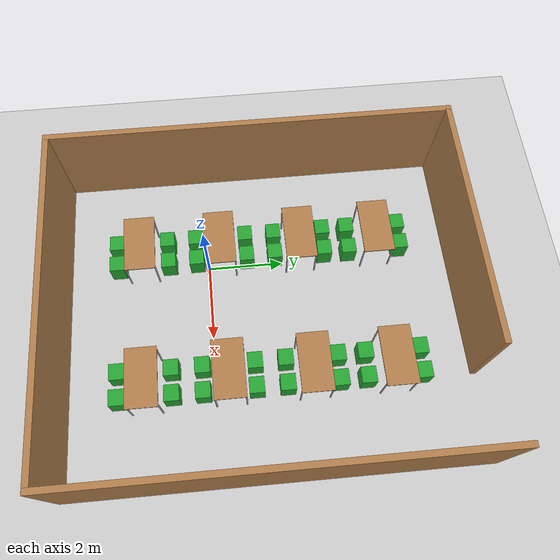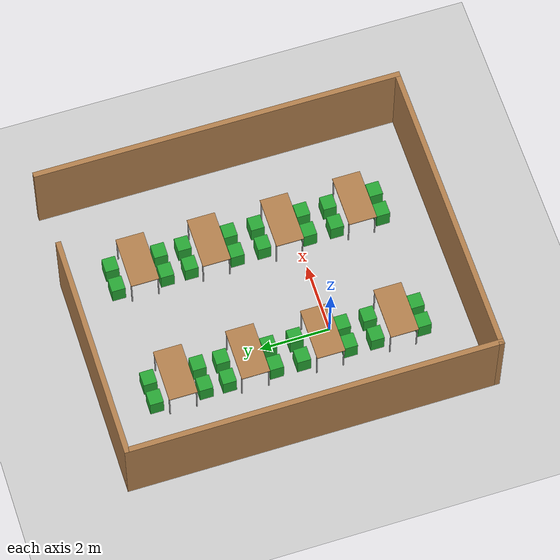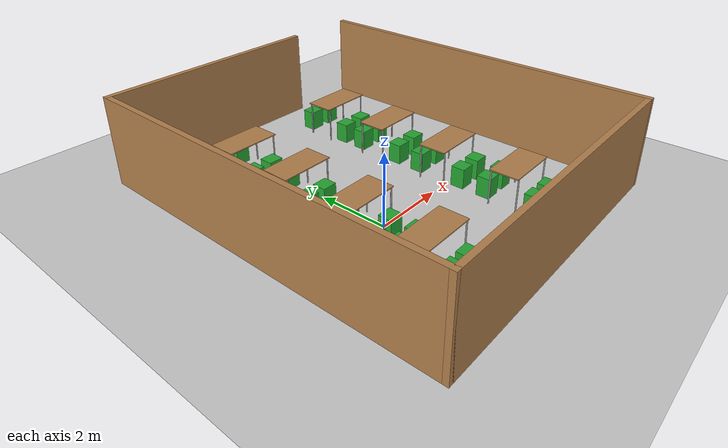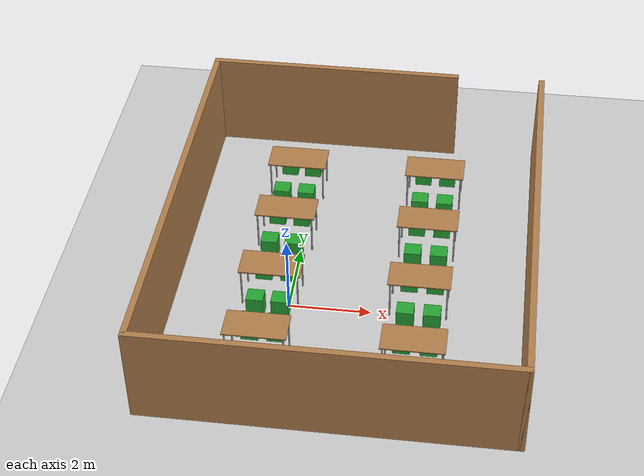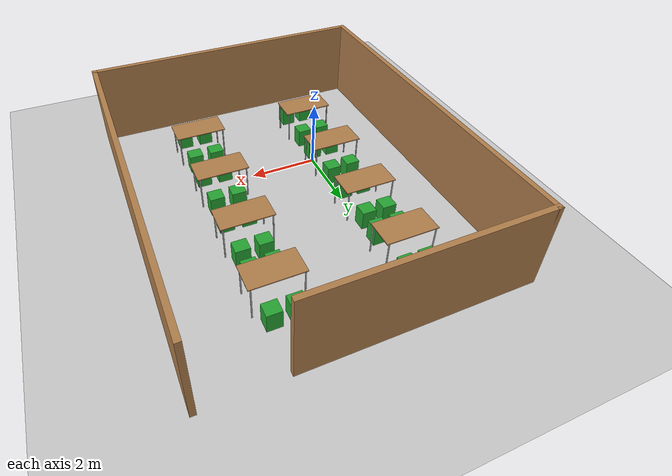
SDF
<sdf version="1.7">
 <world name="default">
  <light name="sun" type="directional">
   <pose>0 0 10 0 -0 0</pose>
   <diffuse>0.8 0.8 0.8 1</diffuse>
   <specular>0.2 0.2 0.2 1</specular>
   <attenuation>
    <range>1000</range>
    <constant>0.9</constant>
    <linear>0.01</linear>
    <quadratic>0.001</quadratic>
   </attenuation>
   <direction>-0.5 0.1 -0.9</direction>
   <spot><inner_angle>0</inner_angle><outer_angle>0</outer_angle><falloff>0</falloff></spot>
  </light>
  <model name="ground_plane">
   <static>1</static>
   <link name="link">
    <collision name="collision">
     <geometry><plane><normal>0 0 1</normal><size>100 100</size></plane></geometry>
     <surface>
      <contact><collide_bitmask>65535</collide_bitmask></contact>
      <friction><ode><mu>100</mu><mu2>50</mu2></ode></friction>
     </surface>
    </collision>
    <visual name="visual">
     <cast_shadows>0</cast_shadows>
     <geometry><plane><normal>0 0 1</normal><size>100 100</size></plane></geometry>
     <material>
      <script><uri>file://media/materials/scripts/gazebo.material</uri><name>Gazebo/Grey</name></script>
     </material>
    </visual>
   </link>
  </model>
  <gravity>0 0 -9.8</gravity>
  <magnetic_field>6e-06 2.3e-05 -4.2e-05</magnetic_field>
  <atmosphere type="adiabatic"/>
  <physics type="ode">
   <max_step_size>0.001</max_step_size>
   <real_time_factor>1</real_time_factor>
   <real_time_update_rate>1000</real_time_update_rate>
  </physics>
  <scene><ambient>0.4 0.4 0.4 1</ambient><background>0.7 0.7 0.7 1</background><shadows>1</shadows></scene>
  <audio><device>default</device></audio>
  <spherical_coordinates>
   <surface_model>EARTH_WGS84</surface_model>
   <latitude_deg>0</latitude_deg>
   <longitude_deg>0</longitude_deg>
   <elevation>0</elevation>
   <heading_deg>0</heading_deg>
  </spherical_coordinates>
  <model name="table">
   <static>1</static>
   <link name="link">
    <collision name="surface">
     <pose>0 0 1 0 -0 0</pose>
     <geometry><box><size>1.5 0.8 0.03</size></box></geometry>
     <surface><friction><ode><mu>0.6</mu><mu2>0.6</mu2></ode></friction></surface>
    </collision>
    <visual name="visual1">
     <pose>0 0 1 0 -0 0</pose>
     <geometry><box><size>1.5 0.8 0.03</size></box></geometry>
     <material>
      <script><uri>file://media/materials/scripts/gazebo.material</uri><name>Gazebo/Wood</name></script>
     </material>
    </visual>
    <collision name="front_left_leg">
     <pose>0.68 0.38 0.5 0 -0 0</pose>
     <geometry><cylinder><radius>0.02</radius><length>1</length></cylinder></geometry>
    </collision>
    <visual name="front_left_leg">
     <pose>0.68 0.38 0.5 0 -0 0</pose>
     <geometry><cylinder><radius>0.02</radius><length>1</length></cylinder></geometry>
     <material>
      <script><uri>file://media/materials/scripts/gazebo.material</uri><name>Gazebo/Grey</name></script>
     </material>
    </visual>
    <collision name="front_right_leg">
     <pose>0.68 -0.38 0.5 0 -0 0</pose>
     <geometry><cylinder><radius>0.02</radius><length>1</length></cylinder></geometry>
    </collision>
    <visual name="front_right_leg">
     <pose>0.68 -0.38 0.5 0 -0 0</pose>
     <geometry><cylinder><radius>0.02</radius><length>1</length></cylinder></geometry>
     <material>
      <script><uri>file://media/materials/scripts/gazebo.material</uri><name>Gazebo/Grey</name></script>
     </material>
    </visual>
    <collision name="back_right_leg">
     <pose>-0.68 -0.38 0.5 0 -0 0</pose>
     <geometry><cylinder><radius>0.02</radius><length>1</length></cylinder></geometry>
    </collision>
    <visual name="back_right_leg">
     <pose>-0.68 -0.38 0.5 0 -0 0</pose>
     <geometry><cylinder><radius>0.02</radius><length>1</length></cylinder></geometry>
     <material>
      <script><uri>file://media/materials/scripts/gazebo.material</uri><name>Gazebo/Grey</name></script>
     </material>
    </visual>
    <collision name="back_left_leg">
     <pose>-0.68 0.38 0.5 0 -0 0</pose>
     <geometry><cylinder><radius>0.02</radius><length>1</length></cylinder></geometry>
    </collision>
    <visual name="back_left_leg">
     <pose>-0.68 0.38 0.5 0 -0 0</pose>
     <geometry><cylinder><radius>0.02</radius><length>1</length></cylinder></geometry>
     <material>
      <script><uri>file://media/materials/scripts/gazebo.material</uri><name>Gazebo/Grey</name></script>
     </material>
    </visual>
   </link>
   <pose>-0.449286 -1.73361 0 0 -0 0</pose>
  </model>
  <model name="table_0">
   <static>1</static>
   <link name="link">
    <collision name="surface">
     <pose>0 0 1 0 -0 0</pose>
     <geometry><box><size>1.5 0.8 0.03</size></box></geometry>
     <surface><friction><ode><mu>0.6</mu><mu2>0.6</mu2></ode></friction></surface>
    </collision>
    <visual name="visual1">
     <pose>0 0 1 0 -0 0</pose>
     <geometry><box><size>1.5 0.8 0.03</size></box></geometry>
     <material>
      <script><uri>file://media/materials/scripts/gazebo.material</uri><name>Gazebo/Wood</name></script>
     </material>
    </visual>
    <collision name="front_left_leg">
     <pose>0.68 0.38 0.5 0 -0 0</pose>
     <geometry><cylinder><radius>0.02</radius><length>1</length></cylinder></geometry>
    </collision>
    <visual name="front_left_leg">
     <pose>0.68 0.38 0.5 0 -0 0</pose>
     <geometry><cylinder><radius>0.02</radius><length>1</length></cylinder></geometry>
     <material>
      <script><uri>file://media/materials/scripts/gazebo.material</uri><name>Gazebo/Grey</name></script>
     </material>
    </visual>
    <collision name="front_right_leg">
     <pose>0.68 -0.38 0.5 0 -0 0</pose>
     <geometry><cylinder><radius>0.02</radius><length>1</length></cylinder></geometry>
    </collision>
    <visual name="front_right_leg">
     <pose>0.68 -0.38 0.5 0 -0 0</pose>
     <geometry><cylinder><radius>0.02</radius><length>1</length></cylinder></geometry>
     <material>
      <script><uri>file://media/materials/scripts/gazebo.material</uri><name>Gazebo/Grey</name></script>
     </material>
    </visual>
    <collision name="back_right_leg">
     <pose>-0.68 -0.38 0.5 0 -0 0</pose>
     <geometry><cylinder><radius>0.02</radius><length>1</length></cylinder></geometry>
    </collision>
    <visual name="back_right_leg">
     <pose>-0.68 -0.38 0.5 0 -0 0</pose>
     <geometry><cylinder><radius>0.02</radius><length>1</length></cylinder></geometry>
     <material>
      <script><uri>file://media/materials/scripts/gazebo.material</uri><name>Gazebo/Grey</name></script>
     </material>
    </visual>
    <collision name="back_left_leg">
     <pose>-0.68 0.38 0.5 0 -0 0</pose>
     <geometry><cylinder><radius>0.02</radius><length>1</length></cylinder></geometry>
    </collision>
    <visual name="back_left_leg">
     <pose>-0.68 0.38 0.5 0 -0 0</pose>
     <geometry><cylinder><radius>0.02</radius><length>1</length></cylinder></geometry>
     <material>
      <script><uri>file://media/materials/scripts/gazebo.material</uri><name>Gazebo/Grey</name></script>
     </material>
    </visual>
   </link>
   <pose>3.15884 -1.74422 0 0 -0 0</pose>
  </model>
  <model name="table_1">
   <static>1</static>
   <link name="link">
    <collision name="surface">
     <pose>0 0 1 0 -0 0</pose>
     <geometry><box><size>1.5 0.8 0.03</size></box></geometry>
     <surface><friction><ode><mu>0.6</mu><mu2>0.6</mu2></ode></friction></surface>
    </collision>
    <visual name="visual1">
     <pose>0 0 1 0 -0 0</pose>
     <geometry><box><size>1.5 0.8 0.03</size></box></geometry>
     <material>
      <script><uri>file://media/materials/scripts/gazebo.material</uri><name>Gazebo/Wood</name></script>
     </material>
    </visual>
    <collision name="front_left_leg">
     <pose>0.68 0.38 0.5 0 -0 0</pose>
     <geometry><cylinder><radius>0.02</radius><length>1</length></cylinder></geometry>
    </collision>
    <visual name="front_left_leg">
     <pose>0.68 0.38 0.5 0 -0 0</pose>
     <geometry><cylinder><radius>0.02</radius><length>1</length></cylinder></geometry>
     <material>
      <script><uri>file://media/materials/scripts/gazebo.material</uri><name>Gazebo/Grey</name></script>
     </material>
    </visual>
    <collision name="front_right_leg">
     <pose>0.68 -0.38 0.5 0 -0 0</pose>
     <geometry><cylinder><radius>0.02</radius><length>1</length></cylinder></geometry>
    </collision>
    <visual name="front_right_leg">
     <pose>0.68 -0.38 0.5 0 -0 0</pose>
     <geometry><cylinder><radius>0.02</radius><length>1</length></cylinder></geometry>
     <material>
      <script><uri>file://media/materials/scripts/gazebo.material</uri><name>Gazebo/Grey</name></script>
     </material>
    </visual>
    <collision name="back_right_leg">
     <pose>-0.68 -0.38 0.5 0 -0 0</pose>
     <geometry><cylinder><radius>0.02</radius><length>1</length></cylinder></geometry>
    </collision>
    <visual name="back_right_leg">
     <pose>-0.68 -0.38 0.5 0 -0 0</pose>
     <geometry><cylinder><radius>0.02</radius><length>1</length></cylinder></geometry>
     <material>
      <script><uri>file://media/materials/scripts/gazebo.material</uri><name>Gazebo/Grey</name></script>
     </material>
    </visual>
    <collision name="back_left_leg">
     <pose>-0.68 0.38 0.5 0 -0 0</pose>
     <geometry><cylinder><radius>0.02</radius><length>1</length></cylinder></geometry>
    </collision>
    <visual name="back_left_leg">
     <pose>-0.68 0.38 0.5 0 -0 0</pose>
     <geometry><cylinder><radius>0.02</radius><length>1</length></cylinder></geometry>
     <material>
      <script><uri>file://media/materials/scripts/gazebo.material</uri><name>Gazebo/Grey</name></script>
     </material>
    </visual>
   </link>
   <pose>-0.448266 0.356158 0 0 -0 0</pose>
  </model>
  <model name="table_2">
   <static>1</static>
   <link name="link">
    <collision name="surface">
     <pose>0 0 1 0 -0 0</pose>
     <geometry><box><size>1.5 0.8 0.03</size></box></geometry>
     <surface><friction><ode><mu>0.6</mu><mu2>0.6</mu2></ode></friction></surface>
    </collision>
    <visual name="visual1">
     <pose>0 0 1 0 -0 0</pose>
     <geometry><box><size>1.5 0.8 0.03</size></box></geometry>
     <material>
      <script><uri>file://media/materials/scripts/gazebo.material</uri><name>Gazebo/Wood</name></script>
     </material>
    </visual>
    <collision name="front_left_leg">
     <pose>0.68 0.38 0.5 0 -0 0</pose>
     <geometry><cylinder><radius>0.02</radius><length>1</length></cylinder></geometry>
    </collision>
    <visual name="front_left_leg">
     <pose>0.68 0.38 0.5 0 -0 0</pose>
     <geometry><cylinder><radius>0.02</radius><length>1</length></cylinder></geometry>
     <material>
      <script><uri>file://media/materials/scripts/gazebo.material</uri><name>Gazebo/Grey</name></script>
     </material>
    </visual>
    <collision name="front_right_leg">
     <pose>0.68 -0.38 0.5 0 -0 0</pose>
     <geometry><cylinder><radius>0.02</radius><length>1</length></cylinder></geometry>
    </collision>
    <visual name="front_right_leg">
     <pose>0.68 -0.38 0.5 0 -0 0</pose>
     <geometry><cylinder><radius>0.02</radius><length>1</length></cylinder></geometry>
     <material>
      <script><uri>file://media/materials/scripts/gazebo.material</uri><name>Gazebo/Grey</name></script>
     </material>
    </visual>
    <collision name="back_right_leg">
     <pose>-0.68 -0.38 0.5 0 -0 0</pose>
     <geometry><cylinder><radius>0.02</radius><length>1</length></cylinder></geometry>
    </collision>
    <visual name="back_right_leg">
     <pose>-0.68 -0.38 0.5 0 -0 0</pose>
     <geometry><cylinder><radius>0.02</radius><length>1</length></cylinder></geometry>
     <material>
      <script><uri>file://media/materials/scripts/gazebo.material</uri><name>Gazebo/Grey</name></script>
     </material>
    </visual>
    <collision name="back_left_leg">
     <pose>-0.68 0.38 0.5 0 -0 0</pose>
     <geometry><cylinder><radius>0.02</radius><length>1</length></cylinder></geometry>
    </collision>
    <visual name="back_left_leg">
     <pose>-0.68 0.38 0.5 0 -0 0</pose>
     <geometry><cylinder><radius>0.02</radius><length>1</length></cylinder></geometry>
     <material>
      <script><uri>file://media/materials/scripts/gazebo.material</uri><name>Gazebo/Grey</name></script>
     </material>
    </visual>
   </link>
   <pose>3.12408 0.362677 0 0 -0 0</pose>
  </model>
  <model name="table_3">
   <static>1</static>
   <link name="link">
    <collision name="surface">
     <pose>0 0 1 0 -0 0</pose>
     <geometry><box><size>1.5 0.8 0.03</size></box></geometry>
     <surface><friction><ode><mu>0.6</mu><mu2>0.6</mu2></ode></friction></surface>
    </collision>
    <visual name="visual1">
     <pose>0 0 1 0 -0 0</pose>
     <geometry><box><size>1.5 0.8 0.03</size></box></geometry>
     <material>
      <script><uri>file://media/materials/scripts/gazebo.material</uri><name>Gazebo/Wood</name></script>
     </material>
    </visual>
    <collision name="front_left_leg">
     <pose>0.68 0.38 0.5 0 -0 0</pose>
     <geometry><cylinder><radius>0.02</radius><length>1</length></cylinder></geometry>
    </collision>
    <visual name="front_left_leg">
     <pose>0.68 0.38 0.5 0 -0 0</pose>
     <geometry><cylinder><radius>0.02</radius><length>1</length></cylinder></geometry>
     <material>
      <script><uri>file://media/materials/scripts/gazebo.material</uri><name>Gazebo/Grey</name></script>
     </material>
    </visual>
    <collision name="front_right_leg">
     <pose>0.68 -0.38 0.5 0 -0 0</pose>
     <geometry><cylinder><radius>0.02</radius><length>1</length></cylinder></geometry>
    </collision>
    <visual name="front_right_leg">
     <pose>0.68 -0.38 0.5 0 -0 0</pose>
     <geometry><cylinder><radius>0.02</radius><length>1</length></cylinder></geometry>
     <material>
      <script><uri>file://media/materials/scripts/gazebo.material</uri><name>Gazebo/Grey</name></script>
     </material>
    </visual>
    <collision name="back_right_leg">
     <pose>-0.68 -0.38 0.5 0 -0 0</pose>
     <geometry><cylinder><radius>0.02</radius><length>1</length></cylinder></geometry>
    </collision>
    <visual name="back_right_leg">
     <pose>-0.68 -0.38 0.5 0 -0 0</pose>
     <geometry><cylinder><radius>0.02</radius><length>1</length></cylinder></geometry>
     <material>
      <script><uri>file://media/materials/scripts/gazebo.material</uri><name>Gazebo/Grey</name></script>
     </material>
    </visual>
    <collision name="back_left_leg">
     <pose>-0.68 0.38 0.5 0 -0 0</pose>
     <geometry><cylinder><radius>0.02</radius><length>1</length></cylinder></geometry>
    </collision>
    <visual name="back_left_leg">
     <pose>-0.68 0.38 0.5 0 -0 0</pose>
     <geometry><cylinder><radius>0.02</radius><length>1</length></cylinder></geometry>
     <material>
      <script><uri>file://media/materials/scripts/gazebo.material</uri><name>Gazebo/Grey</name></script>
     </material>
    </visual>
   </link>
   <pose>-0.416385 2.47071 0 0 -0 0</pose>
  </model>
  <model name="table_4">
   <static>1</static>
   <link name="link">
    <collision name="surface">
     <pose>0 0 1 0 -0 0</pose>
     <geometry><box><size>1.5 0.8 0.03</size></box></geometry>
     <surface><friction><ode><mu>0.6</mu><mu2>0.6</mu2></ode></friction></surface>
    </collision>
    <visual name="visual1">
     <pose>0 0 1 0 -0 0</pose>
     <geometry><box><size>1.5 0.8 0.03</size></box></geometry>
     <material>
      <script><uri>file://media/materials/scripts/gazebo.material</uri><name>Gazebo/Wood</name></script>
     </material>
    </visual>
    <collision name="front_left_leg">
     <pose>0.68 0.38 0.5 0 -0 0</pose>
     <geometry><cylinder><radius>0.02</radius><length>1</length></cylinder></geometry>
    </collision>
    <visual name="front_left_leg">
     <pose>0.68 0.38 0.5 0 -0 0</pose>
     <geometry><cylinder><radius>0.02</radius><length>1</length></cylinder></geometry>
     <material>
      <script><uri>file://media/materials/scripts/gazebo.material</uri><name>Gazebo/Grey</name></script>
     </material>
    </visual>
    <collision name="front_right_leg">
     <pose>0.68 -0.38 0.5 0 -0 0</pose>
     <geometry><cylinder><radius>0.02</radius><length>1</length></cylinder></geometry>
    </collision>
    <visual name="front_right_leg">
     <pose>0.68 -0.38 0.5 0 -0 0</pose>
     <geometry><cylinder><radius>0.02</radius><length>1</length></cylinder></geometry>
     <material>
      <script><uri>file://media/materials/scripts/gazebo.material</uri><name>Gazebo/Grey</name></script>
     </material>
    </visual>
    <collision name="back_right_leg">
     <pose>-0.68 -0.38 0.5 0 -0 0</pose>
     <geometry><cylinder><radius>0.02</radius><length>1</length></cylinder></geometry>
    </collision>
    <visual name="back_right_leg">
     <pose>-0.68 -0.38 0.5 0 -0 0</pose>
     <geometry><cylinder><radius>0.02</radius><length>1</length></cylinder></geometry>
     <material>
      <script><uri>file://media/materials/scripts/gazebo.material</uri><name>Gazebo/Grey</name></script>
     </material>
    </visual>
    <collision name="back_left_leg">
     <pose>-0.68 0.38 0.5 0 -0 0</pose>
     <geometry><cylinder><radius>0.02</radius><length>1</length></cylinder></geometry>
    </collision>
    <visual name="back_left_leg">
     <pose>-0.68 0.38 0.5 0 -0 0</pose>
     <geometry><cylinder><radius>0.02</radius><length>1</length></cylinder></geometry>
     <material>
      <script><uri>file://media/materials/scripts/gazebo.material</uri><name>Gazebo/Grey</name></script>
     </material>
    </visual>
   </link>
   <pose>3.14165 2.46002 0 0 -0 0</pose>
  </model>
  <model name="table_5">
   <static>1</static>
   <link name="link">
    <collision name="surface">
     <pose>0 0 1 0 -0 0</pose>
     <geometry><box><size>1.5 0.8 0.03</size></box></geometry>
     <surface><friction><ode><mu>0.6</mu><mu2>0.6</mu2></ode></friction></surface>
    </collision>
    <visual name="visual1">
     <pose>0 0 1 0 -0 0</pose>
     <geometry><box><size>1.5 0.8 0.03</size></box></geometry>
     <material>
      <script><uri>file://media/materials/scripts/gazebo.material</uri><name>Gazebo/Wood</name></script>
     </material>
    </visual>
    <collision name="front_left_leg">
     <pose>0.68 0.38 0.5 0 -0 0</pose>
     <geometry><cylinder><radius>0.02</radius><length>1</length></cylinder></geometry>
    </collision>
    <visual name="front_left_leg">
     <pose>0.68 0.38 0.5 0 -0 0</pose>
     <geometry><cylinder><radius>0.02</radius><length>1</length></cylinder></geometry>
     <material>
      <script><uri>file://media/materials/scripts/gazebo.material</uri><name>Gazebo/Grey</name></script>
     </material>
    </visual>
    <collision name="front_right_leg">
     <pose>0.68 -0.38 0.5 0 -0 0</pose>
     <geometry><cylinder><radius>0.02</radius><length>1</length></cylinder></geometry>
    </collision>
    <visual name="front_right_leg">
     <pose>0.68 -0.38 0.5 0 -0 0</pose>
     <geometry><cylinder><radius>0.02</radius><length>1</length></cylinder></geometry>
     <material>
      <script><uri>file://media/materials/scripts/gazebo.material</uri><name>Gazebo/Grey</name></script>
     </material>
    </visual>
    <collision name="back_right_leg">
     <pose>-0.68 -0.38 0.5 0 -0 0</pose>
     <geometry><cylinder><radius>0.02</radius><length>1</length></cylinder></geometry>
    </collision>
    <visual name="back_right_leg">
     <pose>-0.68 -0.38 0.5 0 -0 0</pose>
     <geometry><cylinder><radius>0.02</radius><length>1</length></cylinder></geometry>
     <material>
      <script><uri>file://media/materials/scripts/gazebo.material</uri><name>Gazebo/Grey</name></script>
     </material>
    </visual>
    <collision name="back_left_leg">
     <pose>-0.68 0.38 0.5 0 -0 0</pose>
     <geometry><cylinder><radius>0.02</radius><length>1</length></cylinder></geometry>
    </collision>
    <visual name="back_left_leg">
     <pose>-0.68 0.38 0.5 0 -0 0</pose>
     <geometry><cylinder><radius>0.02</radius><length>1</length></cylinder></geometry>
     <material>
      <script><uri>file://media/materials/scripts/gazebo.material</uri><name>Gazebo/Grey</name></script>
     </material>
    </visual>
   </link>
   <pose>-0.421115 4.50398 0 0 -0 0</pose>
  </model>
  <model name="table_6">
   <static>1</static>
   <link name="link">
    <collision name="surface">
     <pose>0 0 1 0 -0 0</pose>
     <geometry><box><size>1.5 0.8 0.03</size></box></geometry>
     <surface><friction><ode><mu>0.6</mu><mu2>0.6</mu2></ode></friction></surface>
    </collision>
    <visual name="visual1">
     <pose>0 0 1 0 -0 0</pose>
     <geometry><box><size>1.5 0.8 0.03</size></box></geometry>
     <material>
      <script><uri>file://media/materials/scripts/gazebo.material</uri><name>Gazebo/Wood</name></script>
     </material>
    </visual>
    <collision name="front_left_leg">
     <pose>0.68 0.38 0.5 0 -0 0</pose>
     <geometry><cylinder><radius>0.02</radius><length>1</length></cylinder></geometry>
    </collision>
    <visual name="front_left_leg">
     <pose>0.68 0.38 0.5 0 -0 0</pose>
     <geometry><cylinder><radius>0.02</radius><length>1</length></cylinder></geometry>
     <material>
      <script><uri>file://media/materials/scripts/gazebo.material</uri><name>Gazebo/Grey</name></script>
     </material>
    </visual>
    <collision name="front_right_leg">
     <pose>0.68 -0.38 0.5 0 -0 0</pose>
     <geometry><cylinder><radius>0.02</radius><length>1</length></cylinder></geometry>
    </collision>
    <visual name="front_right_leg">
     <pose>0.68 -0.38 0.5 0 -0 0</pose>
     <geometry><cylinder><radius>0.02</radius><length>1</length></cylinder></geometry>
     <material>
      <script><uri>file://media/materials/scripts/gazebo.material</uri><name>Gazebo/Grey</name></script>
     </material>
    </visual>
    <collision name="back_right_leg">
     <pose>-0.68 -0.38 0.5 0 -0 0</pose>
     <geometry><cylinder><radius>0.02</radius><length>1</length></cylinder></geometry>
    </collision>
    <visual name="back_right_leg">
     <pose>-0.68 -0.38 0.5 0 -0 0</pose>
     <geometry><cylinder><radius>0.02</radius><length>1</length></cylinder></geometry>
     <material>
      <script><uri>file://media/materials/scripts/gazebo.material</uri><name>Gazebo/Grey</name></script>
     </material>
    </visual>
    <collision name="back_left_leg">
     <pose>-0.68 0.38 0.5 0 -0 0</pose>
     <geometry><cylinder><radius>0.02</radius><length>1</length></cylinder></geometry>
    </collision>
    <visual name="back_left_leg">
     <pose>-0.68 0.38 0.5 0 -0 0</pose>
     <geometry><cylinder><radius>0.02</radius><length>1</length></cylinder></geometry>
     <material>
      <script><uri>file://media/materials/scripts/gazebo.material</uri><name>Gazebo/Grey</name></script>
     </material>
    </visual>
   </link>
   <pose>3.15272 4.49476 0 0 -0 0</pose>
  </model>
  <model name="unit_box">
   <pose>3.48513 -1.09017 0.281426 0 -0 0</pose>
   <link name="link">
    <inertial>
     <mass>1</mass>
     <inertia>
      <ixx>0.166667</ixx>
      <ixy>0</ixy>
      <ixz>0</ixz>
      <iyy>0.166667</iyy>
      <iyz>0</iyz>
      <izz>0.166667</izz>
     </inertia>
    </inertial>
    <collision name="collision">
     <geometry><box><size>0.412045 0.383772 0.562851</size></box></geometry>
    </collision>
    <visual name="visual">
     <geometry><box><size>0.412045 0.383772 0.562851</size></box></geometry>
     <material>
      <script><name>Gazebo/Green</name><uri>file://media/materials/scripts/gazebo.material</uri></script>
     </material>
    </visual>
   </link>
  </model>
  <model name="unit_box_clone">
   <pose>2.8441 -1.08556 0.281425 0 -0 0</pose>
   <link name="link">
    <inertial>
     <mass>1</mass>
     <inertia>
      <ixx>0.166667</ixx>
      <ixy>0</ixy>
      <ixz>0</ixz>
      <iyy>0.166667</iyy>
      <iyz>0</iyz>
      <izz>0.166667</izz>
     </inertia>
    </inertial>
    <collision name="collision">
     <geometry><box><size>0.412045 0.383772 0.562851</size></box></geometry>
    </collision>
    <visual name="visual">
     <geometry><box><size>0.412045 0.383772 0.562851</size></box></geometry>
     <material>
      <script><name>Gazebo/Green</name><uri>file://media/materials/scripts/gazebo.material</uri></script>
     </material>
    </visual>
   </link>
  </model>
  <model name="unit_box_clone_0">
   <pose>3.48128 -0.318815 0.281425 0 -0 0</pose>
   <link name="link">
    <inertial>
     <mass>1</mass>
     <inertia>
      <ixx>0.166667</ixx>
      <ixy>0</ixy>
      <ixz>0</ixz>
      <iyy>0.166667</iyy>
      <iyz>0</iyz>
      <izz>0.166667</izz>
     </inertia>
    </inertial>
    <collision name="collision">
     <geometry><box><size>0.412045 0.383772 0.562851</size></box></geometry>
    </collision>
    <visual name="visual">
     <geometry><box><size>0.412045 0.383772 0.562851</size></box></geometry>
     <material>
      <script><name>Gazebo/Green</name><uri>file://media/materials/scripts/gazebo.material</uri></script>
     </material>
    </visual>
   </link>
  </model>
  <model name="unit_box_clone_1">
   <pose>2.84205 -0.306364 0.281425 0 -0 0</pose>
   <link name="link">
    <inertial>
     <mass>1</mass>
     <inertia>
      <ixx>0.166667</ixx>
      <ixy>0</ixy>
      <ixz>0</ixz>
      <iyy>0.166667</iyy>
      <iyz>0</iyz>
      <izz>0.166667</izz>
     </inertia>
    </inertial>
    <collision name="collision">
     <geometry><box><size>0.412045 0.383772 0.562851</size></box></geometry>
    </collision>
    <visual name="visual">
     <geometry><box><size>0.412045 0.383772 0.562851</size></box></geometry>
     <material>
      <script><name>Gazebo/Green</name><uri>file://media/materials/scripts/gazebo.material</uri></script>
     </material>
    </visual>
   </link>
  </model>
  <model name="unit_box_clone_2">
   <pose>3.48732 -2.43411 0.281425 0 -0 0</pose>
   <link name="link">
    <inertial>
     <mass>1</mass>
     <inertia>
      <ixx>0.166667</ixx>
      <ixy>0</ixy>
      <ixz>0</ixz>
      <iyy>0.166667</iyy>
      <iyz>0</iyz>
      <izz>0.166667</izz>
     </inertia>
    </inertial>
    <collision name="collision">
     <geometry><box><size>0.412045 0.383772 0.562851</size></box></geometry>
    </collision>
    <visual name="visual">
     <geometry><box><size>0.412045 0.383772 0.562851</size></box></geometry>
     <material>
      <script><name>Gazebo/Green</name><uri>file://media/materials/scripts/gazebo.material</uri></script>
     </material>
    </visual>
   </link>
  </model>
  <model name="unit_box_clone_3">
   <pose>2.83914 -2.42554 0.281425 0 -0 0</pose>
   <link name="link">
    <inertial>
     <mass>1</mass>
     <inertia>
      <ixx>0.166667</ixx>
      <ixy>0</ixy>
      <ixz>0</ixz>
      <iyy>0.166667</iyy>
      <iyz>0</iyz>
      <izz>0.166667</izz>
     </inertia>
    </inertial>
    <collision name="collision">
     <geometry><box><size>0.412045 0.383772 0.562851</size></box></geometry>
    </collision>
    <visual name="visual">
     <geometry><box><size>0.412045 0.383772 0.562851</size></box></geometry>
     <material>
      <script><name>Gazebo/Green</name><uri>file://media/materials/scripts/gazebo.material</uri></script>
     </material>
    </visual>
   </link>
  </model>
  <model name="unit_box_clone_4">
   <pose>-0.136756 -2.41673 0.281425 0 -0 0</pose>
   <link name="link">
    <inertial>
     <mass>1</mass>
     <inertia>
      <ixx>0.166667</ixx>
      <ixy>0</ixy>
      <ixz>0</ixz>
      <iyy>0.166667</iyy>
      <iyz>0</iyz>
      <izz>0.166667</izz>
     </inertia>
    </inertial>
    <collision name="collision">
     <geometry><box><size>0.412045 0.383772 0.562851</size></box></geometry>
    </collision>
    <visual name="visual">
     <geometry><box><size>0.412045 0.383772 0.562851</size></box></geometry>
     <material>
      <script><name>Gazebo/Green</name><uri>file://media/materials/scripts/gazebo.material</uri></script>
     </material>
    </visual>
   </link>
  </model>
  <model name="unit_box_clone_5">
   <pose>-0.742185 -2.41217 0.281425 0 -0 0</pose>
   <link name="link">
    <inertial>
     <mass>1</mass>
     <inertia>
      <ixx>0.166667</ixx>
      <ixy>0</ixy>
      <ixz>0</ixz>
      <iyy>0.166667</iyy>
      <iyz>0</iyz>
      <izz>0.166667</izz>
     </inertia>
    </inertial>
    <collision name="collision">
     <geometry><box><size>0.412045 0.383772 0.562851</size></box></geometry>
    </collision>
    <visual name="visual">
     <geometry><box><size>0.412045 0.383772 0.562851</size></box></geometry>
     <material>
      <script><name>Gazebo/Green</name><uri>file://media/materials/scripts/gazebo.material</uri></script>
     </material>
    </visual>
   </link>
  </model>
  <model name="unit_box_clone_6">
   <pose>-0.126504 -1.05211 0.281425 0 -0 0</pose>
   <link name="link">
    <inertial>
     <mass>1</mass>
     <inertia>
      <ixx>0.166667</ixx>
      <ixy>0</ixy>
      <ixz>0</ixz>
      <iyy>0.166667</iyy>
      <iyz>0</iyz>
      <izz>0.166667</izz>
     </inertia>
    </inertial>
    <collision name="collision">
     <geometry><box><size>0.412045 0.383772 0.562851</size></box></geometry>
    </collision>
    <visual name="visual">
     <geometry><box><size>0.412045 0.383772 0.562851</size></box></geometry>
     <material>
      <script><name>Gazebo/Green</name><uri>file://media/materials/scripts/gazebo.material</uri></script>
     </material>
    </visual>
   </link>
  </model>
  <model name="unit_box_clone_7">
   <pose>-0.744931 -1.06042 0.281425 0 -0 0</pose>
   <link name="link">
    <inertial>
     <mass>1</mass>
     <inertia>
      <ixx>0.166667</ixx>
      <ixy>0</ixy>
      <ixz>0</ixz>
      <iyy>0.166667</iyy>
      <iyz>0</iyz>
      <izz>0.166667</izz>
     </inertia>
    </inertial>
    <collision name="collision">
     <geometry><box><size>0.412045 0.383772 0.562851</size></box></geometry>
    </collision>
    <visual name="visual">
     <geometry><box><size>0.412045 0.383772 0.562851</size></box></geometry>
     <material>
      <script><name>Gazebo/Green</name><uri>file://media/materials/scripts/gazebo.material</uri></script>
     </material>
    </visual>
   </link>
  </model>
  <model name="unit_box_clone_8">
   <pose>-0.14339 -0.299437 0.281425 0 -0 0</pose>
   <link name="link">
    <inertial>
     <mass>1</mass>
     <inertia>
      <ixx>0.166667</ixx>
      <ixy>0</ixy>
      <ixz>0</ixz>
      <iyy>0.166667</iyy>
      <iyz>0</iyz>
      <izz>0.166667</izz>
     </inertia>
    </inertial>
    <collision name="collision">
     <geometry><box><size>0.412045 0.383772 0.562851</size></box></geometry>
    </collision>
    <visual name="visual">
     <geometry><box><size>0.412045 0.383772 0.562851</size></box></geometry>
     <material>
      <script><name>Gazebo/Green</name><uri>file://media/materials/scripts/gazebo.material</uri></script>
     </material>
    </visual>
   </link>
  </model>
  <model name="unit_box_clone_9">
   <pose>-0.74408 -0.298246 0.281425 0 -0 0</pose>
   <link name="link">
    <inertial>
     <mass>1</mass>
     <inertia>
      <ixx>0.166667</ixx>
      <ixy>0</ixy>
      <ixz>0</ixz>
      <iyy>0.166667</iyy>
      <iyz>0</iyz>
      <izz>0.166667</izz>
     </inertia>
    </inertial>
    <collision name="collision">
     <geometry><box><size>0.412045 0.383772 0.562851</size></box></geometry>
    </collision>
    <visual name="visual">
     <geometry><box><size>0.412045 0.383772 0.562851</size></box></geometry>
     <material>
      <script><name>Gazebo/Green</name><uri>file://media/materials/scripts/gazebo.material</uri></script>
     </material>
    </visual>
   </link>
  </model>
  <model name="unit_box_clone_10">
   <pose>-0.138008 1.04443 0.281425 0 -0 0</pose>
   <link name="link">
    <inertial>
     <mass>1</mass>
     <inertia>
      <ixx>0.166667</ixx>
      <ixy>0</ixy>
      <ixz>0</ixz>
      <iyy>0.166667</iyy>
      <iyz>0</iyz>
      <izz>0.166667</izz>
     </inertia>
    </inertial>
    <collision name="collision">
     <geometry><box><size>0.412045 0.383772 0.562851</size></box></geometry>
    </collision>
    <visual name="visual">
     <geometry><box><size>0.412045 0.383772 0.562851</size></box></geometry>
     <material>
      <script><name>Gazebo/Green</name><uri>file://media/materials/scripts/gazebo.material</uri></script>
     </material>
    </visual>
   </link>
  </model>
  <model name="unit_box_clone_11">
   <pose>-0.756831 1.03825 0.281425 0 -0 0</pose>
   <link name="link">
    <inertial>
     <mass>1</mass>
     <inertia>
      <ixx>0.166667</ixx>
      <ixy>0</ixy>
      <ixz>0</ixz>
      <iyy>0.166667</iyy>
      <iyz>0</iyz>
      <izz>0.166667</izz>
     </inertia>
    </inertial>
    <collision name="collision">
     <geometry><box><size>0.412045 0.383772 0.562851</size></box></geometry>
    </collision>
    <visual name="visual">
     <geometry><box><size>0.412045 0.383772 0.562851</size></box></geometry>
     <material>
      <script><name>Gazebo/Green</name><uri>file://media/materials/scripts/gazebo.material</uri></script>
     </material>
    </visual>
   </link>
  </model>
  <model name="unit_box_clone_12">
   <pose>-0.147378 1.80312 0.281425 0 -0 0</pose>
   <link name="link">
    <inertial>
     <mass>1</mass>
     <inertia>
      <ixx>0.166667</ixx>
      <ixy>0</ixy>
      <ixz>0</ixz>
      <iyy>0.166667</iyy>
      <iyz>0</iyz>
      <izz>0.166667</izz>
     </inertia>
    </inertial>
    <collision name="collision">
     <geometry><box><size>0.412045 0.383772 0.562851</size></box></geometry>
    </collision>
    <visual name="visual">
     <geometry><box><size>0.412045 0.383772 0.562851</size></box></geometry>
     <material>
      <script><name>Gazebo/Green</name><uri>file://media/materials/scripts/gazebo.material</uri></script>
     </material>
    </visual>
   </link>
  </model>
  <model name="unit_box_clone_13">
   <pose>-0.748761 1.80695 0.281425 0 -0 0</pose>
   <link name="link">
    <inertial>
     <mass>1</mass>
     <inertia>
      <ixx>0.166667</ixx>
      <ixy>0</ixy>
      <ixz>0</ixz>
      <iyy>0.166667</iyy>
      <iyz>0</iyz>
      <izz>0.166667</izz>
     </inertia>
    </inertial>
    <collision name="collision">
     <geometry><box><size>0.412045 0.383772 0.562851</size></box></geometry>
    </collision>
    <visual name="visual">
     <geometry><box><size>0.412045 0.383772 0.562851</size></box></geometry>
     <material>
      <script><name>Gazebo/Green</name><uri>file://media/materials/scripts/gazebo.material</uri></script>
     </material>
    </visual>
   </link>
  </model>
  <model name="unit_box_clone_14">
   <pose>-0.13923 3.14081 0.281425 0 -0 0</pose>
   <link name="link">
    <inertial>
     <mass>1</mass>
     <inertia>
      <ixx>0.166667</ixx>
      <ixy>0</ixy>
      <ixz>0</ixz>
      <iyy>0.166667</iyy>
      <iyz>0</iyz>
      <izz>0.166667</izz>
     </inertia>
    </inertial>
    <collision name="collision">
     <geometry><box><size>0.412045 0.383772 0.562851</size></box></geometry>
    </collision>
    <visual name="visual">
     <geometry><box><size>0.412045 0.383772 0.562851</size></box></geometry>
     <material>
      <script><name>Gazebo/Green</name><uri>file://media/materials/scripts/gazebo.material</uri></script>
     </material>
    </visual>
   </link>
  </model>
  <model name="unit_box_clone_15">
   <pose>-0.7593 3.14556 0.281425 0 -0 0</pose>
   <link name="link">
    <inertial>
     <mass>1</mass>
     <inertia>
      <ixx>0.166667</ixx>
      <ixy>0</ixy>
      <ixz>0</ixz>
      <iyy>0.166667</iyy>
      <iyz>0</iyz>
      <izz>0.166667</izz>
     </inertia>
    </inertial>
    <collision name="collision">
     <geometry><box><size>0.412045 0.383772 0.562851</size></box></geometry>
    </collision>
    <visual name="visual">
     <geometry><box><size>0.412045 0.383772 0.562851</size></box></geometry>
     <material>
      <script><name>Gazebo/Green</name><uri>file://media/materials/scripts/gazebo.material</uri></script>
     </material>
    </visual>
   </link>
  </model>
  <model name="unit_box_clone_16">
   <pose>-0.126175 3.80214 0.281425 0 -0 0</pose>
   <link name="link">
    <inertial>
     <mass>1</mass>
     <inertia>
      <ixx>0.166667</ixx>
      <ixy>0</ixy>
      <ixz>0</ixz>
      <iyy>0.166667</iyy>
      <iyz>0</iyz>
      <izz>0.166667</izz>
     </inertia>
    </inertial>
    <collision name="collision">
     <geometry><box><size>0.412045 0.383772 0.562851</size></box></geometry>
    </collision>
    <visual name="visual">
     <geometry><box><size>0.412045 0.383772 0.562851</size></box></geometry>
     <material>
      <script><name>Gazebo/Green</name><uri>file://media/materials/scripts/gazebo.material</uri></script>
     </material>
    </visual>
   </link>
  </model>
  <model name="unit_box_clone_17">
   <pose>-0.757675 3.80569 0.281425 0 -0 0</pose>
   <link name="link">
    <inertial>
     <mass>1</mass>
     <inertia>
      <ixx>0.166667</ixx>
      <ixy>0</ixy>
      <ixz>0</ixz>
      <iyy>0.166667</iyy>
      <iyz>0</iyz>
      <izz>0.166667</izz>
     </inertia>
    </inertial>
    <collision name="collision">
     <geometry><box><size>0.412045 0.383772 0.562851</size></box></geometry>
    </collision>
    <visual name="visual">
     <geometry><box><size>0.412045 0.383772 0.562851</size></box></geometry>
     <material>
      <script><name>Gazebo/Green</name><uri>file://media/materials/scripts/gazebo.material</uri></script>
     </material>
    </visual>
   </link>
  </model>
  <model name="unit_box_clone_18">
   <pose>-0.142865 5.19655 0.281425 0 -0 0</pose>
   <link name="link">
    <inertial>
     <mass>1</mass>
     <inertia>
      <ixx>0.166667</ixx>
      <ixy>0</ixy>
      <ixz>0</ixz>
      <iyy>0.166667</iyy>
      <iyz>0</iyz>
      <izz>0.166667</izz>
     </inertia>
    </inertial>
    <collision name="collision">
     <geometry><box><size>0.412045 0.383772 0.562851</size></box></geometry>
    </collision>
    <visual name="visual">
     <geometry><box><size>0.412045 0.383772 0.562851</size></box></geometry>
     <material>
      <script><name>Gazebo/Green</name><uri>file://media/materials/scripts/gazebo.material</uri></script>
     </material>
    </visual>
   </link>
  </model>
  <model name="unit_box_clone_19">
   <pose>-0.75268 5.20014 0.281425 0 -0 0</pose>
   <link name="link">
    <inertial>
     <mass>1</mass>
     <inertia>
      <ixx>0.166667</ixx>
      <ixy>0</ixy>
      <ixz>0</ixz>
      <iyy>0.166667</iyy>
      <iyz>0</iyz>
      <izz>0.166667</izz>
     </inertia>
    </inertial>
    <collision name="collision">
     <geometry><box><size>0.412045 0.383772 0.562851</size></box></geometry>
    </collision>
    <visual name="visual">
     <geometry><box><size>0.412045 0.383772 0.562851</size></box></geometry>
     <material>
      <script><name>Gazebo/Green</name><uri>file://media/materials/scripts/gazebo.material</uri></script>
     </material>
    </visual>
   </link>
  </model>
  <model name="unit_box_clone_20">
   <pose>3.45974 5.19463 0.281425 0 -0 0</pose>
   <link name="link">
    <inertial>
     <mass>1</mass>
     <inertia>
      <ixx>0.166667</ixx>
      <ixy>0</ixy>
      <ixz>0</ixz>
      <iyy>0.166667</iyy>
      <iyz>0</iyz>
      <izz>0.166667</izz>
     </inertia>
    </inertial>
    <collision name="collision">
     <geometry><box><size>0.412045 0.383772 0.562851</size></box></geometry>
    </collision>
    <visual name="visual">
     <geometry><box><size>0.412045 0.383772 0.562851</size></box></geometry>
     <material>
      <script><name>Gazebo/Green</name><uri>file://media/materials/scripts/gazebo.material</uri></script>
     </material>
    </visual>
   </link>
  </model>
  <model name="unit_box_clone_21">
   <pose>2.83011 3.80696 0.281425 0 0 -0.000263</pose>
   <link name="link">
    <inertial>
     <mass>1</mass>
     <inertia>
      <ixx>0.166667</ixx>
      <ixy>0</ixy>
      <ixz>0</ixz>
      <iyy>0.166667</iyy>
      <iyz>0</iyz>
      <izz>0.166667</izz>
     </inertia>
    </inertial>
    <collision name="collision">
     <geometry><box><size>0.412045 0.383772 0.562851</size></box></geometry>
    </collision>
    <visual name="visual">
     <geometry><box><size>0.412045 0.383772 0.562851</size></box></geometry>
     <material>
      <script><name>Gazebo/Green</name><uri>file://media/materials/scripts/gazebo.material</uri></script>
     </material>
    </visual>
   </link>
  </model>
  <model name="unit_box_clone_22">
   <pose>3.46544 3.79793 0.281425 0 -0 0</pose>
   <link name="link">
    <inertial>
     <mass>1</mass>
     <inertia>
      <ixx>0.166667</ixx>
      <ixy>0</ixy>
      <ixz>0</ixz>
      <iyy>0.166667</iyy>
      <iyz>0</iyz>
      <izz>0.166667</izz>
     </inertia>
    </inertial>
    <collision name="collision">
     <geometry><box><size>0.412045 0.383772 0.562851</size></box></geometry>
    </collision>
    <visual name="visual">
     <geometry><box><size>0.412045 0.383772 0.562851</size></box></geometry>
     <material>
      <script><name>Gazebo/Green</name><uri>file://media/materials/scripts/gazebo.material</uri></script>
     </material>
    </visual>
   </link>
  </model>
  <model name="unit_box_clone_23">
   <pose>2.83058 5.20188 0.281425 -0 -0 -0.000263</pose>
   <link name="link">
    <inertial>
     <mass>1</mass>
     <inertia>
      <ixx>0.166667</ixx>
      <ixy>0</ixy>
      <ixz>0</ixz>
      <iyy>0.166667</iyy>
      <iyz>0</iyz>
      <izz>0.166667</izz>
     </inertia>
    </inertial>
    <collision name="collision">
     <geometry><box><size>0.412045 0.383772 0.562851</size></box></geometry>
    </collision>
    <visual name="visual">
     <geometry><box><size>0.412045 0.383772 0.562851</size></box></geometry>
     <material>
      <script><name>Gazebo/Green</name><uri>file://media/materials/scripts/gazebo.material</uri></script>
     </material>
    </visual>
   </link>
  </model>
  <model name="unit_box_clone_24">
   <pose>3.47041 3.11559 0.281425 0 -0 0</pose>
   <link name="link">
    <inertial>
     <mass>1</mass>
     <inertia>
      <ixx>0.166667</ixx>
      <ixy>0</ixy>
      <ixz>0</ixz>
      <iyy>0.166667</iyy>
      <iyz>0</iyz>
      <izz>0.166667</izz>
     </inertia>
    </inertial>
    <collision name="collision">
     <geometry><box><size>0.412045 0.383772 0.562851</size></box></geometry>
    </collision>
    <visual name="visual">
     <geometry><box><size>0.412045 0.383772 0.562851</size></box></geometry>
     <material>
      <script><name>Gazebo/Green</name><uri>file://media/materials/scripts/gazebo.material</uri></script>
     </material>
    </visual>
   </link>
  </model>
  <model name="unit_box_clone_25">
   <pose>2.83371 3.11505 0.281425 0 -0 0</pose>
   <link name="link">
    <inertial>
     <mass>1</mass>
     <inertia>
      <ixx>0.166667</ixx>
      <ixy>0</ixy>
      <ixz>0</ixz>
      <iyy>0.166667</iyy>
      <iyz>0</iyz>
      <izz>0.166667</izz>
     </inertia>
    </inertial>
    <collision name="collision">
     <geometry><box><size>0.412045 0.383772 0.562851</size></box></geometry>
    </collision>
    <visual name="visual">
     <geometry><box><size>0.412045 0.383772 0.562851</size></box></geometry>
     <material>
      <script><name>Gazebo/Green</name><uri>file://media/materials/scripts/gazebo.material</uri></script>
     </material>
    </visual>
   </link>
  </model>
  <model name="unit_box_clone_26">
   <pose>3.47178 1.78947 0.281425 0 -0 0</pose>
   <link name="link">
    <inertial>
     <mass>1</mass>
     <inertia>
      <ixx>0.166667</ixx>
      <ixy>0</ixy>
      <ixz>0</ixz>
      <iyy>0.166667</iyy>
      <iyz>0</iyz>
      <izz>0.166667</izz>
     </inertia>
    </inertial>
    <collision name="collision">
     <geometry><box><size>0.412045 0.383772 0.562851</size></box></geometry>
    </collision>
    <visual name="visual">
     <geometry><box><size>0.412045 0.383772 0.562851</size></box></geometry>
     <material>
      <script><name>Gazebo/Green</name><uri>file://media/materials/scripts/gazebo.material</uri></script>
     </material>
    </visual>
   </link>
  </model>
  <model name="unit_box_clone_27">
   <pose>2.83064 1.79157 0.281425 0 -0 0</pose>
   <link name="link">
    <inertial>
     <mass>1</mass>
     <inertia>
      <ixx>0.166667</ixx>
      <ixy>0</ixy>
      <ixz>0</ixz>
      <iyy>0.166667</iyy>
      <iyz>0</iyz>
      <izz>0.166667</izz>
     </inertia>
    </inertial>
    <collision name="collision">
     <geometry><box><size>0.412045 0.383772 0.562851</size></box></geometry>
    </collision>
    <visual name="visual">
     <geometry><box><size>0.412045 0.383772 0.562851</size></box></geometry>
     <material>
      <script><name>Gazebo/Green</name><uri>file://media/materials/scripts/gazebo.material</uri></script>
     </material>
    </visual>
   </link>
  </model>
  <model name="unit_box_clone_28">
   <pose>3.47519 1.01205 0.281425 0 -0 0</pose>
   <link name="link">
    <inertial>
     <mass>1</mass>
     <inertia>
      <ixx>0.166667</ixx>
      <ixy>0</ixy>
      <ixz>0</ixz>
      <iyy>0.166667</iyy>
      <iyz>0</iyz>
      <izz>0.166667</izz>
     </inertia>
    </inertial>
    <collision name="collision">
     <geometry><box><size>0.412045 0.383772 0.562851</size></box></geometry>
    </collision>
    <visual name="visual">
     <geometry><box><size>0.412045 0.383772 0.562851</size></box></geometry>
     <material>
      <script><name>Gazebo/Green</name><uri>file://media/materials/scripts/gazebo.material</uri></script>
     </material>
    </visual>
   </link>
  </model>
  <model name="unit_box_clone_29">
   <pose>2.83658 1.01845 0.281425 0 -0 0</pose>
   <link name="link">
    <inertial>
     <mass>1</mass>
     <inertia>
      <ixx>0.166667</ixx>
      <ixy>0</ixy>
      <ixz>0</ixz>
      <iyy>0.166667</iyy>
      <iyz>0</iyz>
      <izz>0.166667</izz>
     </inertia>
    </inertial>
    <collision name="collision">
     <geometry><box><size>0.412045 0.383772 0.562851</size></box></geometry>
    </collision>
    <visual name="visual">
     <geometry><box><size>0.412045 0.383772 0.562851</size></box></geometry>
     <material>
      <script><name>Gazebo/Green</name><uri>file://media/materials/scripts/gazebo.material</uri></script>
     </material>
    </visual>
   </link>
  </model>
  <model name="Wooden_Walls">
   <pose>1.42 1.375 0 0 -0 0</pose>
   <link name="Wall_22">
    <collision name="Wall_22_Collision">
     <geometry><box><size>8.75 0.15 2.5</size></box></geometry>
     <pose>0 0 1.25 0 -0 0</pose>
    </collision>
    <visual name="Wall_22_Visual">
     <pose>0 0 1.25 0 -0 0</pose>
     <geometry><box><size>8.75 0.15 2.5</size></box></geometry>
     <material>
      <script><uri>file://media/materials/scripts/gazebo.material</uri><name>Gazebo/Wood</name></script>
      <ambient>1 1 1 1</ambient>
     </material>
     <meta><layer>0</layer></meta>
    </visual>
    <pose>0 -5.175 0 0 -0 0</pose>
   </link>
   <link name="Wall_23">
    <collision name="Wall_23_Collision">
     <geometry><box><size>10.5 0.15 2.5</size></box></geometry>
     <pose>0 0 1.25 0 -0 0</pose>
    </collision>
    <visual name="Wall_23_Visual">
     <pose>0 0 1.25 0 -0 0</pose>
     <geometry><box><size>10.5 0.15 2.5</size></box></geometry>
     <material>
      <script><uri>file://media/materials/scripts/gazebo.material</uri><name>Gazebo/Wood</name></script>
      <ambient>1 1 1 1</ambient>
     </material>
     <meta><layer>0</layer></meta>
    </visual>
    <pose>4.3 0 0 0 -0 1.5708</pose>
   </link>
   <link name="Wall_25">
    <collision name="Wall_25_Collision">
     <geometry><box><size>10.5 0.15 2.5</size></box></geometry>
     <pose>0 0 1.25 0 -0 0</pose>
    </collision>
    <visual name="Wall_25_Visual">
     <pose>0 0 1.25 0 -0 0</pose>
     <geometry><box><size>10.5 0.15 2.5</size></box></geometry>
     <material>
      <script><uri>file://media/materials/scripts/gazebo.material</uri><name>Gazebo/Wood</name></script>
      <ambient>1 1 1 1</ambient>
     </material>
     <meta><layer>0</layer></meta>
    </visual>
    <pose>-4.3 0 0 0 -0 1.5708</pose>
   </link>
   <link name="Wall_26">
    <collision name="Wall_26_Collision">
     <geometry><box><size>6.5 0.15 2.5</size></box></geometry>
     <pose>0 0 1.25 0 -0 0</pose>
    </collision>
    <visual name="Wall_26_Visual">
     <pose>0 0 1.25 0 -0 0</pose>
     <geometry><box><size>6.5 0.15 2.5</size></box></geometry>
     <material>
      <script><uri>file://media/materials/scripts/gazebo.material</uri><name>Gazebo/Wood</name></script>
      <ambient>1 1 1 1</ambient>
     </material>
     <meta><layer>0</layer></meta>
    </visual>
    <pose>-1.125 5.175 0 0 -0 0</pose>
   </link>
   <static>1</static>
  </model>
 </world>
</sdf>
